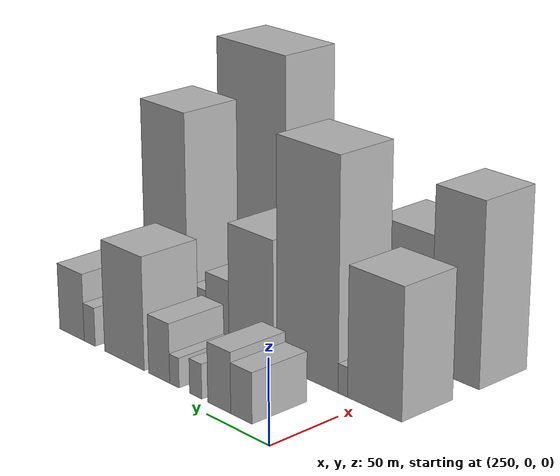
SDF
<sdf version="1.6">
 <world name="default">
  <model name="building_195">
   <static>1</static>
   <pose>280.0000 33.3372 0 0.000000 0.000000 0.000000</pose>
   <link name="link">
    <pose>0 0 15.00 0 0 0</pose>
    <collision name="collision"><geometry><box><size>40.0000 17.2152 30.0000</size></box></geometry></collision>
    <visual name="visual">
     <cast_shadows>0</cast_shadows>
     <geometry><box><size>40.0000 17.2152 30.0000</size></box></geometry>
     <material>
      <script>
       <uri>model://HANNAS_wall/materials/scripts</uri>
       <uri>model://HANNAS_wall/materials/textures</uri>
       <name>vrc/HANNAS_wall</name>
      </script>
     </material>
    </visual>
   </link>
  </model>
  <model name="building_196">
   <static>1</static>
   <pose>280.0000 51.4270 0 0.000000 0.000000 0.000000</pose>
   <link name="link">
    <pose>0 0 18.00 0 0 0</pose>
    <collision name="collision"><geometry><box><size>40.0000 18.9645 36.0000</size></box></geometry></collision>
    <visual name="visual">
     <cast_shadows>0</cast_shadows>
     <geometry><box><size>40.0000 18.9645 36.0000</size></box></geometry>
     <material>
      <script>
       <uri>model://HANNAS_wall/materials/scripts</uri>
       <uri>model://HANNAS_wall/materials/textures</uri>
       <name>vrc/HANNAS_wall</name>
      </script>
     </material>
    </visual>
   </link>
  </model>
  <model name="building_197">
   <static>1</static>
   <pose>280.0000 71.0855 0 0.000000 0.000000 0.000000</pose>
   <link name="link">
    <pose>0 0 10.50 0 0 0</pose>
    <collision name="collision"><geometry><box><size>40.0000 10.3524 21.0000</size></box></geometry></collision>
    <visual name="visual">
     <cast_shadows>0</cast_shadows>
     <geometry><box><size>40.0000 10.3524 21.0000</size></box></geometry>
     <material>
      <script>
       <uri>model://HANNAS_wall/materials/scripts</uri>
       <uri>model://HANNAS_wall/materials/textures</uri>
       <name>vrc/HANNAS_wall</name>
      </script>
     </material>
    </visual>
   </link>
  </model>
  <model name="building_198">
   <static>1</static>
   <pose>280.0000 89.3489 0 0.000000 0.000000 0.000000</pose>
   <link name="link">
    <pose>0 0 9.00 0 0 0</pose>
    <collision name="collision"><geometry><box><size>40.0000 8.1743 18.0000</size></box></geometry></collision>
    <visual name="visual">
     <cast_shadows>0</cast_shadows>
     <geometry><box><size>40.0000 8.1743 18.0000</size></box></geometry>
     <material>
      <script>
       <uri>model://HANNAS_wall/materials/scripts</uri>
       <uri>model://HANNAS_wall/materials/textures</uri>
       <name>vrc/HANNAS_wall</name>
      </script>
     </material>
    </visual>
   </link>
  </model>
  <model name="building_199">
   <static>1</static>
   <pose>280.0000 102.7350 0 0.000000 0.000000 0.000000</pose>
   <link name="link">
    <pose>0 0 18.00 0 0 0</pose>
    <collision name="collision"><geometry><box><size>40.0000 18.5980 36.0000</size></box></geometry></collision>
    <visual name="visual">
     <cast_shadows>0</cast_shadows>
     <geometry><box><size>40.0000 18.5980 36.0000</size></box></geometry>
     <material>
      <script>
       <uri>model://HANNAS_wall/materials/scripts</uri>
       <uri>model://HANNAS_wall/materials/textures</uri>
       <name>vrc/HANNAS_wall</name>
      </script>
     </material>
    </visual>
   </link>
  </model>
  <model name="building_200">
   <static>1</static>
   <pose>280.0000 134.3009 0 0.000000 0.000000 0.000000</pose>
   <link name="link">
    <pose>0 0 34.50 0 0 0</pose>
    <collision name="collision"><geometry><box><size>40.0000 36.5337 69.0000</size></box></geometry></collision>
    <visual name="visual">
     <cast_shadows>0</cast_shadows>
     <geometry><box><size>40.0000 36.5337 69.0000</size></box></geometry>
     <material>
      <script>
       <uri>model://HANNAS_wall/materials/scripts</uri>
       <uri>model://HANNAS_wall/materials/textures</uri>
       <name>vrc/HANNAS_wall</name>
      </script>
     </material>
    </visual>
   </link>
  </model>
  <model name="building_201">
   <static>1</static>
   <pose>280.0000 166.8368 0 0.000000 0.000000 0.000000</pose>
   <link name="link">
    <pose>0 0 12.00 0 0 0</pose>
    <collision name="collision"><geometry><box><size>40.0000 10.5381 24.0000</size></box></geometry></collision>
    <visual name="visual">
     <cast_shadows>0</cast_shadows>
     <geometry><box><size>40.0000 10.5381 24.0000</size></box></geometry>
     <material>
      <script>
       <uri>model://HANNAS_wall/materials/scripts</uri>
       <uri>model://HANNAS_wall/materials/textures</uri>
       <name>vrc/HANNAS_wall</name>
      </script>
     </material>
    </visual>
   </link>
  </model>
  <model name="building_202">
   <static>1</static>
   <pose>280.0000 184.0936 0 0.000000 0.000000 0.000000</pose>
   <link name="link">
    <pose>0 0 21.00 0 0 0</pose>
    <collision name="collision"><geometry><box><size>40.0000 23.9755 42.0000</size></box></geometry></collision>
    <visual name="visual">
     <cast_shadows>0</cast_shadows>
     <geometry><box><size>40.0000 23.9755 42.0000</size></box></geometry>
     <material>
      <script>
       <uri>model://HANNAS_wall/materials/scripts</uri>
       <uri>model://HANNAS_wall/materials/textures</uri>
       <name>vrc/HANNAS_wall</name>
      </script>
     </material>
    </visual>
   </link>
  </model>
  <model name="building_255">
   <static>1</static>
   <pose>340.0000 -7.0949 0 0.000000 0.000000 0.000000</pose>
   <link name="link">
    <pose>0 0 39.00 0 0 0</pose>
    <collision name="collision"><geometry><box><size>40.0000 41.1258 78.0000</size></box></geometry></collision>
    <visual name="visual">
     <cast_shadows>0</cast_shadows>
     <geometry><box><size>40.0000 41.1258 78.0000</size></box></geometry>
     <material>
      <script>
       <uri>model://HANNAS_wall/materials/scripts</uri>
       <uri>model://HANNAS_wall/materials/textures</uri>
       <name>vrc/HANNAS_wall</name>
      </script>
     </material>
    </visual>
   </link>
  </model>
  <model name="building_256">
   <static>1</static>
   <pose>340.0000 17.1285 0 0.000000 0.000000 0.000000</pose>
   <link name="link">
    <pose>0 0 9.00 0 0 0</pose>
    <collision name="collision"><geometry><box><size>40.0000 7.3209 18.0000</size></box></geometry></collision>
    <visual name="visual">
     <cast_shadows>0</cast_shadows>
     <geometry><box><size>40.0000 7.3209 18.0000</size></box></geometry>
     <material>
      <script>
       <uri>model://HANNAS_wall/materials/scripts</uri>
       <uri>model://HANNAS_wall/materials/textures</uri>
       <name>vrc/HANNAS_wall</name>
      </script>
     </material>
    </visual>
   </link>
  </model>
  <model name="building_257">
   <static>1</static>
   <pose>340.0000 45.7551 0 0.000000 0.000000 0.000000</pose>
   <link name="link">
    <pose>0 0 69.00 0 0 0</pose>
    <collision name="collision"><geometry><box><size>40.0000 49.9324 138.0000</size></box></geometry></collision>
    <visual name="visual">
     <cast_shadows>0</cast_shadows>
     <geometry><box><size>40.0000 49.9324 138.0000</size></box></geometry>
     <material>
      <script>
       <uri>model://HANNAS_wall/materials/scripts</uri>
       <uri>model://HANNAS_wall/materials/textures</uri>
       <name>vrc/HANNAS_wall</name>
      </script>
     </material>
    </visual>
   </link>
  </model>
  <model name="building_258">
   <static>1</static>
   <pose>340.0000 92.9014 0 0.000000 0.000000 0.000000</pose>
   <link name="link">
    <pose>0 0 37.50 0 0 0</pose>
    <collision name="collision"><geometry><box><size>40.0000 38.3601 75.0000</size></box></geometry></collision>
    <visual name="visual">
     <cast_shadows>0</cast_shadows>
     <geometry><box><size>40.0000 38.3601 75.0000</size></box></geometry>
     <material>
      <script>
       <uri>model://HANNAS_wall/materials/scripts</uri>
       <uri>model://HANNAS_wall/materials/textures</uri>
       <name>vrc/HANNAS_wall</name>
      </script>
     </material>
    </visual>
   </link>
  </model>
  <model name="building_259">
   <static>1</static>
   <pose>340.0000 122.2684 0 0.000000 0.000000 0.000000</pose>
   <link name="link">
    <pose>0 0 19.50 0 0 0</pose>
    <collision name="collision"><geometry><box><size>40.0000 20.3740 39.0000</size></box></geometry></collision>
    <visual name="visual">
     <cast_shadows>0</cast_shadows>
     <geometry><box><size>40.0000 20.3740 39.0000</size></box></geometry>
     <material>
      <script>
       <uri>model://HANNAS_wall/materials/scripts</uri>
       <uri>model://HANNAS_wall/materials/textures</uri>
       <name>vrc/HANNAS_wall</name>
      </script>
     </material>
    </visual>
   </link>
  </model>
  <model name="building_260">
   <static>1</static>
   <pose>340.0000 138.8278 0 0.000000 0.000000 0.000000</pose>
   <link name="link">
    <pose>0 0 13.50 0 0 0</pose>
    <collision name="collision"><geometry><box><size>40.0000 12.7446 27.0000</size></box></geometry></collision>
    <visual name="visual">
     <cast_shadows>0</cast_shadows>
     <geometry><box><size>40.0000 12.7446 27.0000</size></box></geometry>
     <material>
      <script>
       <uri>model://HANNAS_wall/materials/scripts</uri>
       <uri>model://HANNAS_wall/materials/textures</uri>
       <name>vrc/HANNAS_wall</name>
      </script>
     </material>
    </visual>
   </link>
  </model>
  <model name="building_261">
   <static>1</static>
   <pose>340.0000 169.1779 0 0.000000 0.000000 0.000000</pose>
   <link name="link">
    <pose>0 0 66.00 0 0 0</pose>
    <collision name="collision"><geometry><box><size>40.0000 39.9557 132.0000</size></box></geometry></collision>
    <visual name="visual">
     <cast_shadows>0</cast_shadows>
     <geometry><box><size>40.0000 39.9557 132.0000</size></box></geometry>
     <material>
      <script>
       <uri>model://HANNAS_wall/materials/scripts</uri>
       <uri>model://HANNAS_wall/materials/textures</uri>
       <name>vrc/HANNAS_wall</name>
      </script>
     </material>
    </visual>
   </link>
  </model>
  <model name="building_262">
   <static>1</static>
   <pose>340.0000 193.9363 0 0.000000 0.000000 0.000000</pose>
   <link name="link">
    <pose>0 0 10.50 0 0 0</pose>
    <collision name="collision"><geometry><box><size>40.0000 9.5610 21.0000</size></box></geometry></collision>
    <visual name="visual">
     <cast_shadows>0</cast_shadows>
     <geometry><box><size>40.0000 9.5610 21.0000</size></box></geometry>
     <material>
      <script>
       <uri>model://HANNAS_wall/materials/scripts</uri>
       <uri>model://HANNAS_wall/materials/textures</uri>
       <name>vrc/HANNAS_wall</name>
      </script>
     </material>
    </visual>
   </link>
  </model>
  <model name="building_310">
   <static>1</static>
   <pose>400.0000 -10.9959 0 0.000000 0.000000 0.000000</pose>
   <link name="link">
    <pose>0 0 55.50 0 0 0</pose>
    <collision name="collision"><geometry><box><size>40.0000 36.4248 111.0000</size></box></geometry></collision>
    <visual name="visual">
     <cast_shadows>0</cast_shadows>
     <geometry><box><size>40.0000 36.4248 111.0000</size></box></geometry>
     <material>
      <script>
       <uri>model://HANNAS_wall/materials/scripts</uri>
       <uri>model://HANNAS_wall/materials/textures</uri>
       <name>vrc/HANNAS_wall</name>
      </script>
     </material>
    </visual>
   </link>
  </model>
  <model name="building_311">
   <static>1</static>
   <pose>400.0000 29.0526 0 0.000000 0.000000 0.000000</pose>
   <link name="link">
    <pose>0 0 40.50 0 0 0</pose>
    <collision name="collision"><geometry><box><size>40.0000 43.6722 81.0000</size></box></geometry></collision>
    <visual name="visual">
     <cast_shadows>0</cast_shadows>
     <geometry><box><size>40.0000 43.6722 81.0000</size></box></geometry>
     <material>
      <script>
       <uri>model://HANNAS_wall/materials/scripts</uri>
       <uri>model://HANNAS_wall/materials/textures</uri>
       <name>vrc/HANNAS_wall</name>
      </script>
     </material>
    </visual>
   </link>
  </model>
  <model name="building_312">
   <static>1</static>
   <pose>400.0000 70.7876 0 0.000000 0.000000 0.000000</pose>
   <link name="link">
    <pose>0 0 21.00 0 0 0</pose>
    <collision name="collision"><geometry><box><size>40.0000 23.7976 42.0000</size></box></geometry></collision>
    <visual name="visual">
     <cast_shadows>0</cast_shadows>
     <geometry><box><size>40.0000 23.7976 42.0000</size></box></geometry>
     <material>
      <script>
       <uri>model://HANNAS_wall/materials/scripts</uri>
       <uri>model://HANNAS_wall/materials/textures</uri>
       <name>vrc/HANNAS_wall</name>
      </script>
     </material>
    </visual>
   </link>
  </model>
  <model name="building_313">
   <static>1</static>
   <pose>400.0000 102.4656 0 0.000000 0.000000 0.000000</pose>
   <link name="link">
    <pose>0 0 37.50 0 0 0</pose>
    <collision name="collision"><geometry><box><size>40.0000 39.5585 75.0000</size></box></geometry></collision>
    <visual name="visual">
     <cast_shadows>0</cast_shadows>
     <geometry><box><size>40.0000 39.5585 75.0000</size></box></geometry>
     <material>
      <script>
       <uri>model://HANNAS_wall/materials/scripts</uri>
       <uri>model://HANNAS_wall/materials/textures</uri>
       <name>vrc/HANNAS_wall</name>
      </script>
     </material>
    </visual>
   </link>
  </model>
  <model name="building_314">
   <static>1</static>
   <pose>400.0000 158.8221 0 0.000000 0.000000 0.000000</pose>
   <link name="link">
    <pose>0 0 79.50 0 0 0</pose>
    <collision name="collision"><geometry><box><size>40.0000 61.1546 159.0000</size></box></geometry></collision>
    <visual name="visual">
     <cast_shadows>0</cast_shadows>
     <geometry><box><size>40.0000 61.1546 159.0000</size></box></geometry>
     <material>
      <script>
       <uri>model://HANNAS_wall/materials/scripts</uri>
       <uri>model://HANNAS_wall/materials/textures</uri>
       <name>vrc/HANNAS_wall</name>
      </script>
     </material>
    </visual>
   </link>
  </model>
 </world>
</sdf>
